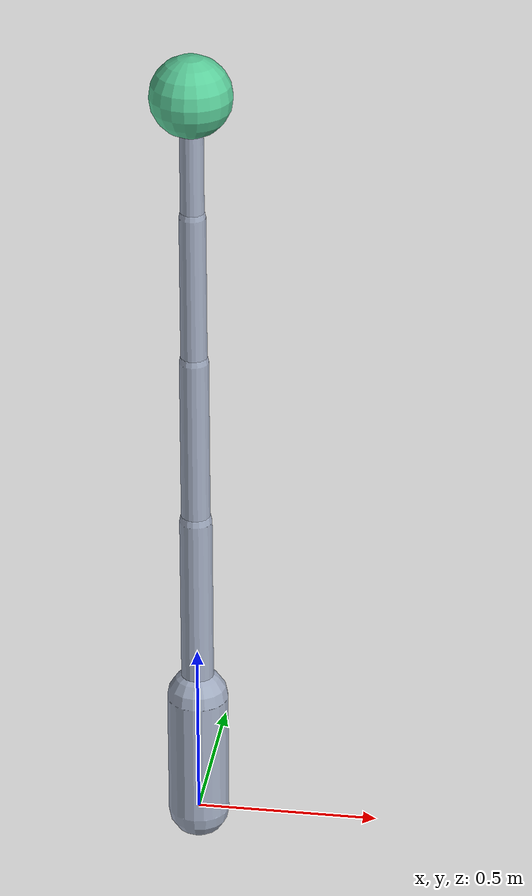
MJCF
<mujoco model="tracker">
  <compiler angle="radian"/>
  <option timestep="0.004" gravity="0 0 -9.81"/>

  <default>
    <joint type="hinge" damping="1.5" armature="0.03"/>
    <geom type="capsule" size="0.045" density="500" rgba="0.62 0.66 0.74 1"/>
    <motor ctrlrange="-400 400" gear="1"/>
  </default>

  <worldbody>
    <body name="base" pos="0 0 0.30">
      <joint name="yaw" axis="0 0 1" range="-3.1 3.1"/>
      <geom name="base_g" fromto="0 0 -0.30 0 0 0.06" size="0.085"/>
      <body name="seg1" pos="0 0 0.06">
        <joint name="j1" axis="0 1 0" range="-2.5 2.5"/>
        <geom name="g1" fromto="0 0 0 0 0 0.55"/>
        <body name="seg2" pos="0 0 0.55">
          <joint name="j2" axis="0 1 0" range="-2.7 2.7"/>
          <geom name="g2" fromto="0 0 0 0 0 0.48" size="0.040"/>
          <body name="seg3" pos="0 0 0.48">
            <joint name="j3" axis="0 1 0" range="-2.7 2.7"/>
            <geom name="g3" fromto="0 0 0 0 0 0.42" size="0.036"/>
            <body name="seg4" pos="0 0 0.42">
              <joint name="j4" axis="0 1 0" range="-2.4 2.4"/>
              <geom name="g4" fromto="0 0 0 0 0 0.34" size="0.032"/>
              <body name="gripper" pos="0 0 0.34">
                <joint name="j5" axis="0 0 1" range="-2.8 2.8"/>
                <!-- ★ 6 kg at the tip. density on a 0.11 m sphere gives roughly that. -->
                <geom name="grip_g" type="sphere" size="0.11" density="1100" rgba="0.35 0.80 0.60 1"/>
              </body>
            </body>
          </body>
        </body>
      </body>
    </body>
  </worldbody>

  <actuator>
    <motor name="m_yaw" joint="yaw"/>
    <motor name="m_j1" joint="j1"/>
    <motor name="m_j2" joint="j2"/>
    <motor name="m_j3" joint="j3"/>
    <motor name="m_j4" joint="j4"/>
    <motor name="m_j5" joint="j5"/>
  </actuator>
</mujoco>
